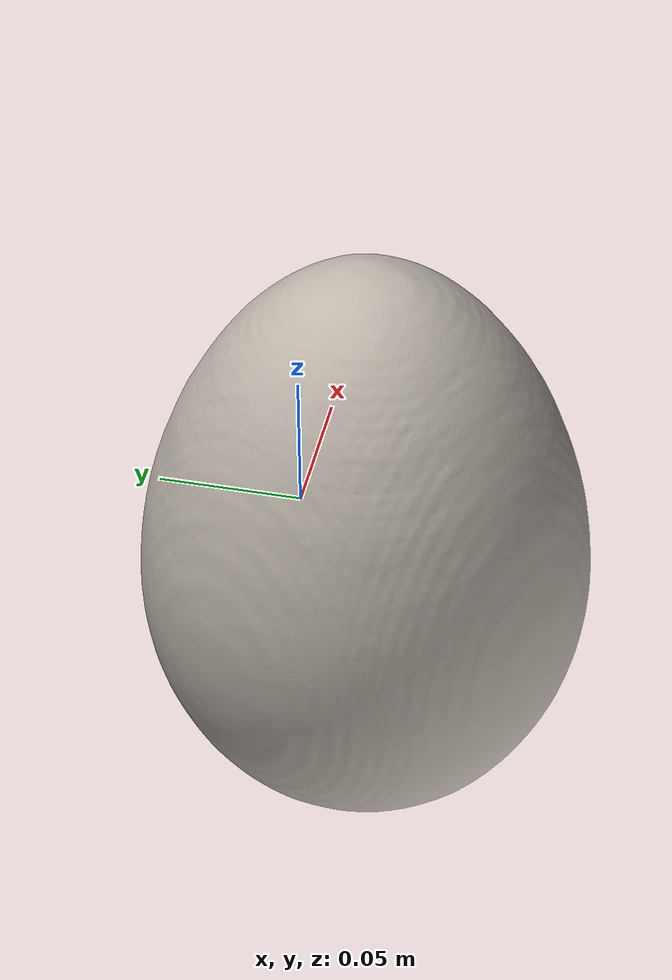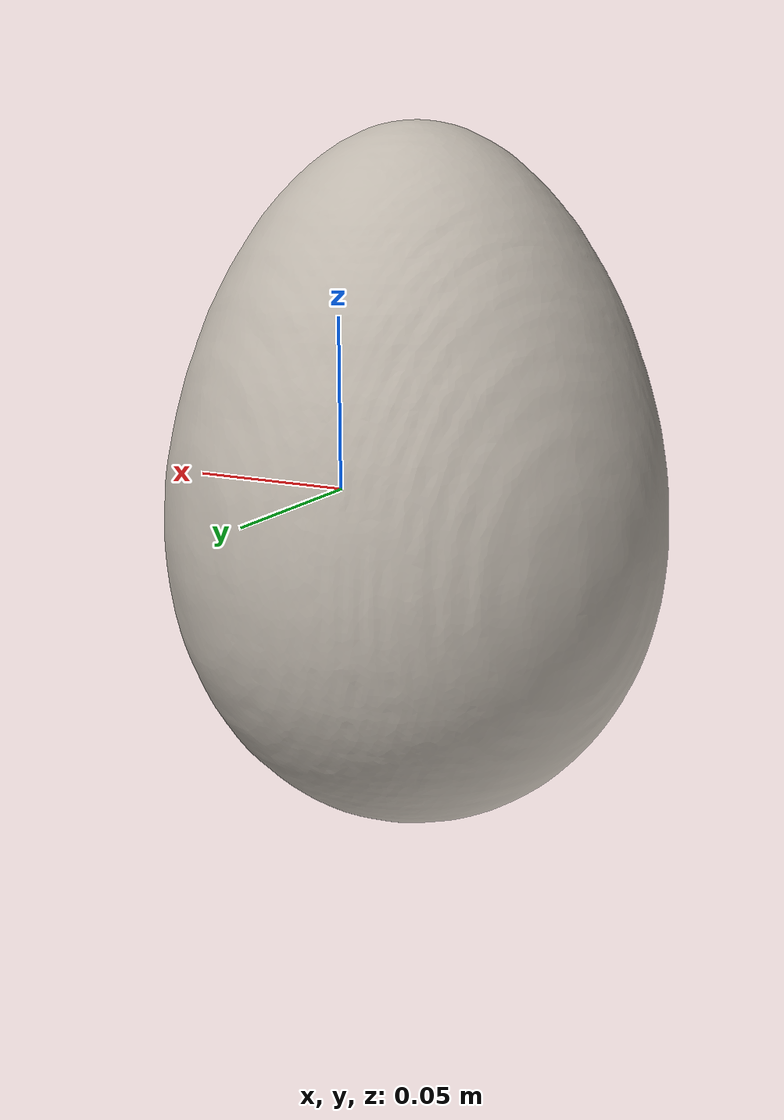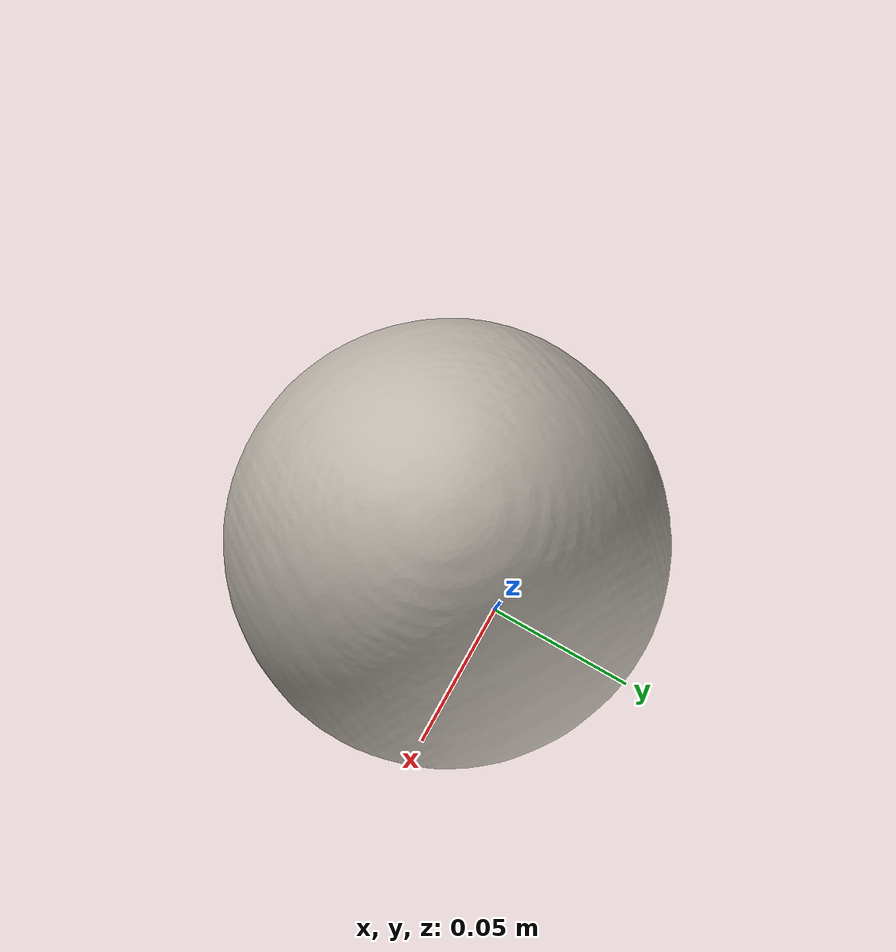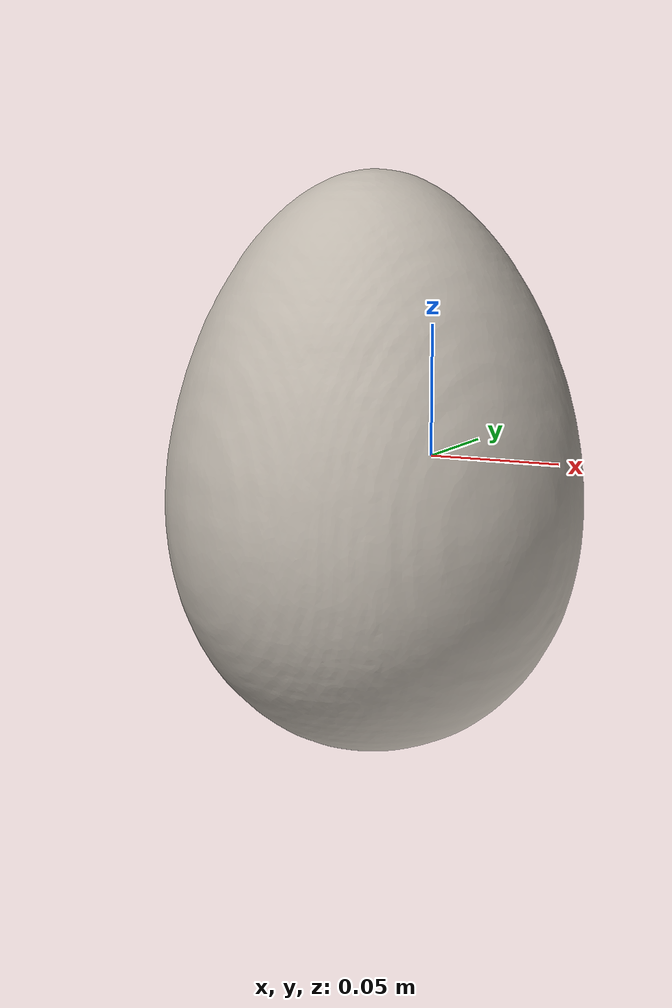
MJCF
<mujoco model="pan_26">
  <asset>
    <mesh file="visual/model_normalized_0.obj" name="model_normalized_0_vis" scale="0.21000000000000002 0.21000000000000002 0.21000000000000002" refquat="0.9669764710448502 3.4060360880938494e-19 -2.7753485671831552e-17 0.25486565960451407"/>
    <mesh file="collision/model_normalized_collision_22.obj" name="model_normalized_collision_22._coll" scale="0.21000000000000002 0.21000000000000002 0.21000000000000002" refquat="0.9669764710448502 3.4060360880938494e-19 -2.7753485671831552e-17 0.25486565960451407"/>
    <mesh file="collision/model_normalized_collision_23.obj" name="model_normalized_collision_23._coll" scale="0.21000000000000002 0.21000000000000002 0.21000000000000002" refquat="0.9669764710448502 3.4060360880938494e-19 -2.7753485671831552e-17 0.25486565960451407"/>
    <mesh file="collision/model_normalized_collision_21.obj" name="model_normalized_collision_21._coll" scale="0.21000000000000002 0.21000000000000002 0.21000000000000002" refquat="0.9669764710448502 3.4060360880938494e-19 -2.7753485671831552e-17 0.25486565960451407"/>
    <mesh file="collision/model_normalized_collision_20.obj" name="model_normalized_collision_20._coll" scale="0.21000000000000002 0.21000000000000002 0.21000000000000002" refquat="0.9669764710448502 3.4060360880938494e-19 -2.7753485671831552e-17 0.25486565960451407"/>
    <mesh file="collision/model_normalized_collision_24.obj" name="model_normalized_collision_24._coll" scale="0.21000000000000002 0.21000000000000002 0.21000000000000002" refquat="0.9669764710448502 3.4060360880938494e-19 -2.7753485671831552e-17 0.25486565960451407"/>
    <mesh file="collision/model_normalized_collision_30.obj" name="model_normalized_collision_30._coll" scale="0.21000000000000002 0.21000000000000002 0.21000000000000002" refquat="0.9669764710448502 3.4060360880938494e-19 -2.7753485671831552e-17 0.25486565960451407"/>
    <mesh file="collision/model_normalized_collision_18.obj" name="model_normalized_collision_18._coll" scale="0.21000000000000002 0.21000000000000002 0.21000000000000002" refquat="0.9669764710448502 3.4060360880938494e-19 -2.7753485671831552e-17 0.25486565960451407"/>
    <mesh file="collision/model_normalized_collision_19.obj" name="model_normalized_collision_19._coll" scale="0.21000000000000002 0.21000000000000002 0.21000000000000002" refquat="0.9669764710448502 3.4060360880938494e-19 -2.7753485671831552e-17 0.25486565960451407"/>
    <mesh file="collision/model_normalized_collision_31.obj" name="model_normalized_collision_31._coll" scale="0.21000000000000002 0.21000000000000002 0.21000000000000002" refquat="0.9669764710448502 3.4060360880938494e-19 -2.7753485671831552e-17 0.25486565960451407"/>
    <mesh file="collision/model_normalized_collision_25.obj" name="model_normalized_collision_25._coll" scale="0.21000000000000002 0.21000000000000002 0.21000000000000002" refquat="0.9669764710448502 3.4060360880938494e-19 -2.7753485671831552e-17 0.25486565960451407"/>
    <mesh file="collision/model_normalized_collision_27.obj" name="model_normalized_collision_27._coll" scale="0.21000000000000002 0.21000000000000002 0.21000000000000002" refquat="0.9669764710448502 3.4060360880938494e-19 -2.7753485671831552e-17 0.25486565960451407"/>
    <mesh file="collision/model_normalized_collision_26.obj" name="model_normalized_collision_26._coll" scale="0.21000000000000002 0.21000000000000002 0.21000000000000002" refquat="0.9669764710448502 3.4060360880938494e-19 -2.7753485671831552e-17 0.25486565960451407"/>
    <mesh file="collision/model_normalized_collision_9.obj" name="model_normalized_collision_9._coll" scale="0.21000000000000002 0.21000000000000002 0.21000000000000002" refquat="0.9669764710448502 3.4060360880938494e-19 -2.7753485671831552e-17 0.25486565960451407"/>
    <mesh file="collision/model_normalized_collision_8.obj" name="model_normalized_collision_8._coll" scale="0.21000000000000002 0.21000000000000002 0.21000000000000002" refquat="0.9669764710448502 3.4060360880938494e-19 -2.7753485671831552e-17 0.25486565960451407"/>
    <mesh file="collision/model_normalized_collision_6.obj" name="model_normalized_collision_6._coll" scale="0.21000000000000002 0.21000000000000002 0.21000000000000002" refquat="0.9669764710448502 3.4060360880938494e-19 -2.7753485671831552e-17 0.25486565960451407"/>
    <mesh file="collision/model_normalized_collision_7.obj" name="model_normalized_collision_7._coll" scale="0.21000000000000002 0.21000000000000002 0.21000000000000002" refquat="0.9669764710448502 3.4060360880938494e-19 -2.7753485671831552e-17 0.25486565960451407"/>
    <mesh file="collision/model_normalized_collision_5.obj" name="model_normalized_collision_5._coll" scale="0.21000000000000002 0.21000000000000002 0.21000000000000002" refquat="0.9669764710448502 3.4060360880938494e-19 -2.7753485671831552e-17 0.25486565960451407"/>
    <mesh file="collision/model_normalized_collision_4.obj" name="model_normalized_collision_4._coll" scale="0.21000000000000002 0.21000000000000002 0.21000000000000002" refquat="0.9669764710448502 3.4060360880938494e-19 -2.7753485671831552e-17 0.25486565960451407"/>
    <mesh file="collision/model_normalized_collision_0.obj" name="model_normalized_collision_0._coll" scale="0.21000000000000002 0.21000000000000002 0.21000000000000002" refquat="0.9669764710448502 3.4060360880938494e-19 -2.7753485671831552e-17 0.25486565960451407"/>
    <mesh file="collision/model_normalized_collision_1.obj" name="model_normalized_collision_1._coll" scale="0.21000000000000002 0.21000000000000002 0.21000000000000002" refquat="0.9669764710448502 3.4060360880938494e-19 -2.7753485671831552e-17 0.25486565960451407"/>
    <mesh file="collision/model_normalized_collision_3.obj" name="model_normalized_collision_3._coll" scale="0.21000000000000002 0.21000000000000002 0.21000000000000002" refquat="0.9669764710448502 3.4060360880938494e-19 -2.7753485671831552e-17 0.25486565960451407"/>
    <mesh file="collision/model_normalized_collision_2.obj" name="model_normalized_collision_2._coll" scale="0.21000000000000002 0.21000000000000002 0.21000000000000002" refquat="0.9669764710448502 3.4060360880938494e-19 -2.7753485671831552e-17 0.25486565960451407"/>
    <mesh file="collision/model_normalized_collision_17.obj" name="model_normalized_collision_17._coll" scale="0.21000000000000002 0.21000000000000002 0.21000000000000002" refquat="0.9669764710448502 3.4060360880938494e-19 -2.7753485671831552e-17 0.25486565960451407"/>
    <mesh file="collision/model_normalized_collision_16.obj" name="model_normalized_collision_16._coll" scale="0.21000000000000002 0.21000000000000002 0.21000000000000002" refquat="0.9669764710448502 3.4060360880938494e-19 -2.7753485671831552e-17 0.25486565960451407"/>
    <mesh file="collision/model_normalized_collision_28.obj" name="model_normalized_collision_28._coll" scale="0.21000000000000002 0.21000000000000002 0.21000000000000002" refquat="0.9669764710448502 3.4060360880938494e-19 -2.7753485671831552e-17 0.25486565960451407"/>
    <mesh file="collision/model_normalized_collision_14.obj" name="model_normalized_collision_14._coll" scale="0.21000000000000002 0.21000000000000002 0.21000000000000002" refquat="0.9669764710448502 3.4060360880938494e-19 -2.7753485671831552e-17 0.25486565960451407"/>
    <mesh file="collision/model_normalized_collision_15.obj" name="model_normalized_collision_15._coll" scale="0.21000000000000002 0.21000000000000002 0.21000000000000002" refquat="0.9669764710448502 3.4060360880938494e-19 -2.7753485671831552e-17 0.25486565960451407"/>
    <mesh file="collision/model_normalized_collision_29.obj" name="model_normalized_collision_29._coll" scale="0.21000000000000002 0.21000000000000002 0.21000000000000002" refquat="0.9669764710448502 3.4060360880938494e-19 -2.7753485671831552e-17 0.25486565960451407"/>
    <mesh file="collision/model_normalized_collision_11.obj" name="model_normalized_collision_11._coll" scale="0.21000000000000002 0.21000000000000002 0.21000000000000002" refquat="0.9669764710448502 3.4060360880938494e-19 -2.7753485671831552e-17 0.25486565960451407"/>
    <mesh file="collision/model_normalized_collision_10.obj" name="model_normalized_collision_10._coll" scale="0.21000000000000002 0.21000000000000002 0.21000000000000002" refquat="0.9669764710448502 3.4060360880938494e-19 -2.7753485671831552e-17 0.25486565960451407"/>
    <mesh file="collision/model_normalized_collision_12.obj" name="model_normalized_collision_12._coll" scale="0.21000000000000002 0.21000000000000002 0.21000000000000002" refquat="0.9669764710448502 3.4060360880938494e-19 -2.7753485671831552e-17 0.25486565960451407"/>
    <mesh file="collision/model_normalized_collision_13.obj" name="model_normalized_collision_13._coll" scale="0.21000000000000002 0.21000000000000002 0.21000000000000002" refquat="0.9669764710448502 3.4060360880938494e-19 -2.7753485671831552e-17 0.25486565960451407"/>
    <texture type="2d" name="image0" file="visual/image0.png"/>
    <material name="Scene_-_Root.033" texture="image0" specular="0.5" shininess="0.25"/>
  </asset>
  <default>
    <default class="region">
      <geom group="1" conaffinity="0" contype="0" rgba="0 1 0 0"/>
    </default>
  </default>
  <worldbody>
    <body>
      <body name="object">
        <body pos="-0.012 -0.025 0">
          <geom solimp="0.998 0.998 0.001" solref="0.001 1" density="100" friction="0.95 0.3 0.1" type="mesh" mesh="model_normalized_0_vis" conaffinity="0" contype="0" group="1" material="Scene_-_Root.033"/>
          <geom solimp="0.998 0.998 0.001" solref="0.001 1" density="100" friction="0.95 0.3 0.1" type="mesh" mesh="model_normalized_collision_22._coll" group="0" rgba="0.8 0.8 0.8 0.0"/>
          <geom solimp="0.998 0.998 0.001" solref="0.001 1" density="100" friction="0.95 0.3 0.1" type="mesh" mesh="model_normalized_collision_23._coll" group="0" rgba="0.8 0.8 0.8 0.0"/>
          <geom solimp="0.998 0.998 0.001" solref="0.001 1" density="100" friction="0.95 0.3 0.1" type="mesh" mesh="model_normalized_collision_21._coll" group="0" rgba="0.8 0.8 0.8 0.0"/>
          <geom solimp="0.998 0.998 0.001" solref="0.001 1" density="100" friction="0.95 0.3 0.1" type="mesh" mesh="model_normalized_collision_20._coll" group="0" rgba="0.8 0.8 0.8 0.0"/>
          <geom solimp="0.998 0.998 0.001" solref="0.001 1" density="100" friction="0.95 0.3 0.1" type="mesh" mesh="model_normalized_collision_24._coll" group="0" rgba="0.8 0.8 0.8 0.0"/>
          <geom solimp="0.998 0.998 0.001" solref="0.001 1" density="100" friction="0.95 0.3 0.1" type="mesh" mesh="model_normalized_collision_30._coll" group="0" rgba="0.8 0.8 0.8 0.0"/>
          <geom solimp="0.998 0.998 0.001" solref="0.001 1" density="100" friction="0.95 0.3 0.1" type="mesh" mesh="model_normalized_collision_18._coll" group="0" rgba="0.8 0.8 0.8 0.0"/>
          <geom solimp="0.998 0.998 0.001" solref="0.001 1" density="100" friction="0.95 0.3 0.1" type="mesh" mesh="model_normalized_collision_19._coll" group="0" rgba="0.8 0.8 0.8 0.0"/>
          <geom solimp="0.998 0.998 0.001" solref="0.001 1" density="100" friction="0.95 0.3 0.1" type="mesh" mesh="model_normalized_collision_31._coll" group="0" rgba="0.8 0.8 0.8 0.0"/>
          <geom solimp="0.998 0.998 0.001" solref="0.001 1" density="100" friction="0.95 0.3 0.1" type="mesh" mesh="model_normalized_collision_25._coll" group="0" rgba="0.8 0.8 0.8 0.0"/>
          <geom solimp="0.998 0.998 0.001" solref="0.001 1" density="100" friction="0.95 0.3 0.1" type="mesh" mesh="model_normalized_collision_27._coll" group="0" rgba="0.8 0.8 0.8 0.0"/>
          <geom solimp="0.998 0.998 0.001" solref="0.001 1" density="100" friction="0.95 0.3 0.1" type="mesh" mesh="model_normalized_collision_26._coll" group="0" rgba="0.8 0.8 0.8 0.0"/>
          <geom solimp="0.998 0.998 0.001" solref="0.001 1" density="100" friction="0.95 0.3 0.1" type="mesh" mesh="model_normalized_collision_9._coll" group="0" rgba="0.8 0.8 0.8 0.0"/>
          <geom solimp="0.998 0.998 0.001" solref="0.001 1" density="100" friction="0.95 0.3 0.1" type="mesh" mesh="model_normalized_collision_8._coll" group="0" rgba="0.8 0.8 0.8 0.0"/>
          <geom solimp="0.998 0.998 0.001" solref="0.001 1" density="100" friction="0.95 0.3 0.1" type="mesh" mesh="model_normalized_collision_6._coll" group="0" rgba="0.8 0.8 0.8 0.0"/>
          <geom solimp="0.998 0.998 0.001" solref="0.001 1" density="100" friction="0.95 0.3 0.1" type="mesh" mesh="model_normalized_collision_7._coll" group="0" rgba="0.8 0.8 0.8 0.0"/>
          <geom solimp="0.998 0.998 0.001" solref="0.001 1" density="100" friction="0.95 0.3 0.1" type="mesh" mesh="model_normalized_collision_5._coll" group="0" rgba="0.8 0.8 0.8 0.0"/>
          <geom solimp="0.998 0.998 0.001" solref="0.001 1" density="100" friction="0.95 0.3 0.1" type="mesh" mesh="model_normalized_collision_4._coll" group="0" rgba="0.8 0.8 0.8 0.0"/>
          <geom solimp="0.998 0.998 0.001" solref="0.001 1" density="100" friction="0.95 0.3 0.1" type="mesh" mesh="model_normalized_collision_0._coll" group="0" rgba="0.8 0.8 0.8 0.0"/>
          <geom solimp="0.998 0.998 0.001" solref="0.001 1" density="100" friction="0.95 0.3 0.1" type="mesh" mesh="model_normalized_collision_1._coll" group="0" rgba="0.8 0.8 0.8 0.0"/>
          <geom solimp="0.998 0.998 0.001" solref="0.001 1" density="100" friction="0.95 0.3 0.1" type="mesh" mesh="model_normalized_collision_3._coll" group="0" rgba="0.8 0.8 0.8 0.0"/>
          <geom solimp="0.998 0.998 0.001" solref="0.001 1" density="100" friction="0.95 0.3 0.1" type="mesh" mesh="model_normalized_collision_2._coll" group="0" rgba="0.8 0.8 0.8 0.0"/>
          <geom solimp="0.998 0.998 0.001" solref="0.001 1" density="100" friction="0.95 0.3 0.1" type="mesh" mesh="model_normalized_collision_17._coll" group="0" rgba="0.8 0.8 0.8 0.0"/>
          <geom solimp="0.998 0.998 0.001" solref="0.001 1" density="100" friction="0.95 0.3 0.1" type="mesh" mesh="model_normalized_collision_16._coll" group="0" rgba="0.8 0.8 0.8 0.0"/>
          <geom solimp="0.998 0.998 0.001" solref="0.001 1" density="100" friction="0.95 0.3 0.1" type="mesh" mesh="model_normalized_collision_28._coll" group="0" rgba="0.8 0.8 0.8 0.0"/>
          <geom solimp="0.998 0.998 0.001" solref="0.001 1" density="100" friction="0.95 0.3 0.1" type="mesh" mesh="model_normalized_collision_14._coll" group="0" rgba="0.8 0.8 0.8 0.0"/>
          <geom solimp="0.998 0.998 0.001" solref="0.001 1" density="100" friction="0.95 0.3 0.1" type="mesh" mesh="model_normalized_collision_15._coll" group="0" rgba="0.8 0.8 0.8 0.0"/>
          <geom solimp="0.998 0.998 0.001" solref="0.001 1" density="100" friction="0.95 0.3 0.1" type="mesh" mesh="model_normalized_collision_29._coll" group="0" rgba="0.8 0.8 0.8 0.0"/>
          <geom solimp="0.998 0.998 0.001" solref="0.001 1" density="100" friction="0.95 0.3 0.1" type="mesh" mesh="model_normalized_collision_11._coll" group="0" rgba="0.8 0.8 0.8 0.0"/>
          <geom solimp="0.998 0.998 0.001" solref="0.001 1" density="100" friction="0.95 0.3 0.1" type="mesh" mesh="model_normalized_collision_10._coll" group="0" rgba="0.8 0.8 0.8 0.0"/>
          <geom solimp="0.998 0.998 0.001" solref="0.001 1" density="100" friction="0.95 0.3 0.1" type="mesh" mesh="model_normalized_collision_12._coll" group="0" rgba="0.8 0.8 0.8 0.0"/>
          <geom solimp="0.998 0.998 0.001" solref="0.001 1" density="100" friction="0.95 0.3 0.1" type="mesh" mesh="model_normalized_collision_13._coll" group="0" rgba="0.8 0.8 0.8 0.0"/>
        </body>
        <geom class="region" name="reg_bbox" type="box" pos="0.0 -0.03744699671426135 2.1000000002824315e-09" size="0.0751416157304095 0.11388103981412738 0.0048351639"/>
        <geom rgba="0 0 0 0" size="0.072 0.001" pos="0 0.001 0" type="cylinder" name="liquid" class="region"/>
        <geom rgba="0 0 0 0 " size="0.067 0.0035" pos="0 0.0015 0.0004" type="cylinder" name="reg_int" class="region"/>
      </body>
    </body>
  </worldbody>
</mujoco>
